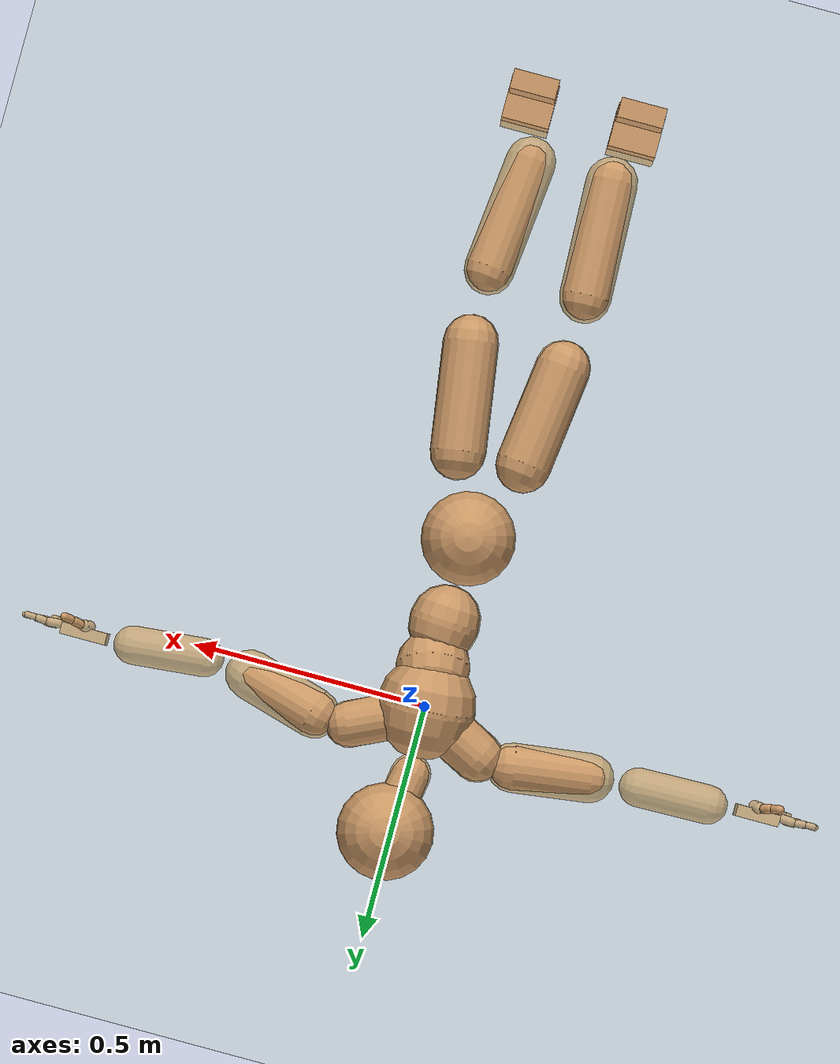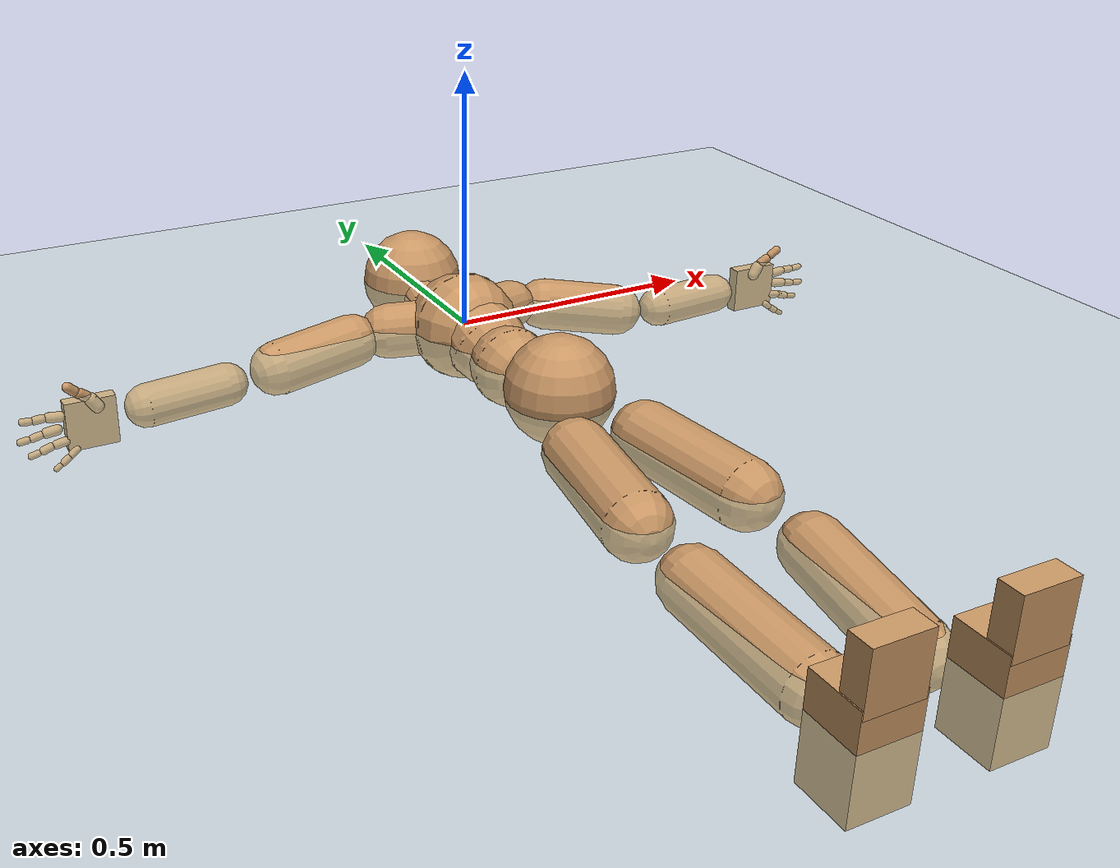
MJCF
<mujoco model="humanoid">
  <compiler coordinate="local"/>
  <default>
    <joint damping="0.0" armature="0.01" stiffness="0.0" limited="true"/>
    <geom conaffinity="1" condim="3" contype="7" margin="0.001" rgba="0.8 0.6 .4 1"/>
  </default>
  <asset>
    <texture type="skybox" builtin="gradient" rgb1=".4 .5 .6" rgb2="0 0 0" width="100" height="100"/>
    <texture builtin="flat" height="1278" mark="cross" markrgb="1 1 1" name="texgeom" random="0.01" rgb1="0.8 0.6 0.4" rgb2="0.8 0.6 0.4" type="cube" width="127"/>
    <texture builtin="checker" height="100" name="texplane" rgb1="0 0 0" rgb2="0.8 0.8 0.8" type="2d" width="100"/>
    <material name="MatPlane" reflectance="0.5" shininess="1" specular="1" texrepeat="60 60" texture="texplane"/>
    <material name="geom" texture="texgeom" texuniform="true"/>
  </asset>
  <worldbody>
    <light cutoff="100" diffuse="1 1 1" dir="-0 0 -1.3" directional="true" exponent="1" pos="0 0 1.3" specular=".1 .1 .1"/>
    <geom conaffinity="1" condim="3" name="floor" pos="0 0 0" rgba="0.8 0.9 0.8 1" size="100 100 .2" type="plane" material="MatPlane"/>
    <body name="Pelvis" pos="0.003 -0.364 0.0123">
      <freejoint name="Pelvis"/>
      <geom type="sphere" contype="1" conaffinity="1" density="4629.6296296296305" size="0.0998" pos="0.0000 0.0000 0.0000" name="Pelvis"/>
      <body name="L_Hip" pos="0.0572 -0.0946 -0.0249">
        <joint name="L_Hip_x" type="hinge" pos="0 0 0" axis="1 0 0" user="250 2.5 1 500 10 2" armature="0.01" range="-90.0000 90.0000" damping="0" stiffness="0"/>
        <joint name="L_Hip_y" type="hinge" pos="0 0 0" axis="0 1 0" user="250 2.5 1 500 10 2" armature="0.01" range="-90.0000 90.0000" damping="0" stiffness="0"/>
        <joint name="L_Hip_z" type="hinge" pos="0 0 0" axis="0 0 1" user="250 2.5 1 500 10 2" armature="0.01" range="-90.0000 90.0000" damping="0" stiffness="0"/>
        <geom type="capsule" contype="1" conaffinity="1" density="2040.816327" fromto="0.0113 -0.0767 -0.0014 0.0453 -0.3069 -0.0056" size="0.0598" name="L_Hip"/>
        <body name="L_Knee" pos="0.0567 -0.3836 -0.007">
          <joint name="L_Knee_x" type="hinge" pos="0 0 0" axis="1 0 0" user="250 2.5 1 500 10 2" armature="0.01" range="-180.0000 180.0000" damping="0" stiffness="0"/>
          <joint name="L_Knee_y" type="hinge" pos="0 0 0" axis="0 1 0" user="250 2.5 1 500 10 2" armature="0.01" range="-5.6250 5.6250" damping="0" stiffness="0"/>
          <joint name="L_Knee_z" type="hinge" pos="0 0 0" axis="0 0 1" user="250 2.5 1 500 10 2" armature="0.01" range="-5.6250 5.6250" damping="0" stiffness="0"/>
          <geom type="capsule" contype="1" conaffinity="1" density="1234.567901" fromto="-0.0085 -0.0818 -0.0063 -0.0342 -0.3273 -0.0251" size="0.0534" name="L_Knee"/>
          <body name="L_Ankle" pos="-0.0427 -0.4091 -0.0314">
            <joint name="L_Ankle_x" type="hinge" pos="0 0 0" axis="1 0 0" user="150 2.5 1 500 10 2" armature="0.01" range="-90.0000 90.0000" damping="0" stiffness="0"/>
            <joint name="L_Ankle_y" type="hinge" pos="0 0 0" axis="0 1 0" user="150 2.5 1 500 10 2" armature="0.01" range="-90.0000 90.0000" damping="0" stiffness="0"/>
            <joint name="L_Ankle_z" type="hinge" pos="0 0 0" axis="0 0 1" user="150 2.5 1 500 10 2" armature="0.01" range="-90.0000 90.0000" damping="0" stiffness="0"/>
            <geom type="box" density="448.525009" pos="0.0414 -0.0294 0.0240" size="0.0507 0.0474 0.0872" quat="1.0000 0.0000 0.0000 0.0000" name="L_Ankle"/>
            <body name="L_Toe" pos="0.048 -0.0593 0.1207">
              <joint name="L_Toe_x" type="hinge" pos="0 0 0" axis="1 0 0" user="150 1 1 500 1 1" armature="0.01" range="-90.0000 90.0000" damping="0" stiffness="0"/>
              <joint name="L_Toe_y" type="hinge" pos="0 0 0" axis="0 1 0" user="150 1 1 500 1 1" armature="0.01" range="-45.0000 45.0000" damping="0" stiffness="0"/>
              <joint name="L_Toe_z" type="hinge" pos="0 0 0" axis="0 0 1" user="150 1 1 500 1 1" armature="0.01" range="-45.0000 45.0000" damping="0" stiffness="0"/>
              <geom type="box" density="422.653692" pos="-0.0066 0.0035 0.0263" size="0.0487 0.021 0.0507" quat="1.0000 0.0000 0.0000 0.0000" name="L_Toe"/>
            </body>
          </body>
        </body>
      </body>
      <body name="R_Hip" pos="-0.0621 -0.1066 -0.0196">
        <joint name="R_Hip_x" type="hinge" pos="0 0 0" axis="1 0 0" user="250 2.5 1 500 10 2" armature="0.01" range="-90.0000 90.0000" damping="0" stiffness="0"/>
        <joint name="R_Hip_y" type="hinge" pos="0 0 0" axis="0 1 0" user="250 2.5 1 500 10 2" armature="0.01" range="-90.0000 90.0000" damping="0" stiffness="0"/>
        <joint name="R_Hip_z" type="hinge" pos="0 0 0" axis="0 0 1" user="250 2.5 1 500 10 2" armature="0.01" range="-90.0000 90.0000" damping="0" stiffness="0"/>
        <geom type="capsule" contype="1" conaffinity="1" density="2040.816327" fromto="-0.0092 -0.0732 -0.0030 -0.0369 -0.2929 -0.0119" size="0.0591" name="R_Hip"/>
        <body name="R_Knee" pos="-0.0462 -0.3662 -0.0148">
          <joint name="R_Knee_x" type="hinge" pos="0 0 0" axis="1 0 0" user="250 2.5 1 500 10 2" armature="0.01" range="-180.0000 180.0000" damping="0" stiffness="0"/>
          <joint name="R_Knee_y" type="hinge" pos="0 0 0" axis="0 1 0" user="250 2.5 1 500 10 2" armature="0.01" range="-5.6250 5.6250" damping="0" stiffness="0"/>
          <joint name="R_Knee_z" type="hinge" pos="0 0 0" axis="0 0 1" user="250 2.5 1 500 10 2" armature="0.01" range="-5.6250 5.6250" damping="0" stiffness="0"/>
          <geom type="capsule" contype="1" conaffinity="1" density="1234.567901" fromto="0.0029 -0.0834 -0.0039 0.0116 -0.3337 -0.0158" size="0.055" name="R_Knee"/>
          <body name="R_Ankle" pos="0.0145 -0.4171 -0.0197">
            <joint name="R_Ankle_x" type="hinge" pos="0 0 0" axis="1 0 0" user="150 1 1 500 10 2" armature="0.01" range="-90.0000 90.0000" damping="0" stiffness="0"/>
            <joint name="R_Ankle_y" type="hinge" pos="0 0 0" axis="0 1 0" user="150 1 1 500 10 2" armature="0.01" range="-90.0000 90.0000" damping="0" stiffness="0"/>
            <joint name="R_Ankle_z" type="hinge" pos="0 0 0" axis="0 0 1" user="150 1 1 500 10 2" armature="0.01" range="-90.0000 90.0000" damping="0" stiffness="0"/>
            <geom type="box" density="448.519576" pos="-0.0247 -0.0268 0.0149" size="0.0507 0.0474 0.0872" quat="1.0000 0.0000 0.0000 0.0000" name="R_Ankle"/>
            <body name="R_Toe" pos="-0.0394 -0.0595 0.1216">
              <joint name="R_Toe_x" type="hinge" pos="0 0 0" axis="1 0 0" user="150 1 1 500 1 1" armature="0.01" range="-90.0000 90.0000" damping="0" stiffness="0"/>
              <joint name="R_Toe_y" type="hinge" pos="0 0 0" axis="0 1 0" user="150 1 1 500 1 1" armature="0.01" range="-45.0000 45.0000" damping="0" stiffness="0"/>
              <joint name="R_Toe_z" type="hinge" pos="0 0 0" axis="0 0 1" user="150 1 1 500 1 1" armature="0.01" range="-45.0000 45.0000" damping="0" stiffness="0"/>
              <geom type="box" density="422.652273" pos="0.0147 0.0062 0.0162" size="0.0487 0.021 0.0507" quat="1.0000 0.0000 0.0000 0.0000" name="R_Toe"/>
            </body>
          </body>
        </body>
      </body>
      <body name="Torso" pos="-0.0026 0.1131 -0.0292">
        <joint name="Torso_x" type="hinge" pos="0 0 0" axis="1 0 0" user="500 5 1 500 10 2" armature="0.01" range="-60.0000 60.0000" damping="0" stiffness="0"/>
        <joint name="Torso_y" type="hinge" pos="0 0 0" axis="0 1 0" user="500 5 1 500 10 2" armature="0.01" range="-60.0000 60.0000" damping="0" stiffness="0"/>
        <joint name="Torso_z" type="hinge" pos="0 0 0" axis="0 0 1" user="500 5 1 500 10 2" armature="0.01" range="-60.0000 60.0000" damping="0" stiffness="0"/>
        <geom type="capsule" contype="1" conaffinity="1" density="2040.816327" fromto="0.0044 0.0625 -0.0030 0.0054 0.0764 -0.0036" size="0.0748" name="Torso"/>
        <body name="Spine" pos="0.0098 0.1389 -0.0066">
          <joint name="Spine_x" type="hinge" pos="0 0 0" axis="1 0 0" user="500 5 1 500 10 2" armature="0.01" range="-60.0000 60.0000" damping="0" stiffness="0"/>
          <joint name="Spine_y" type="hinge" pos="0 0 0" axis="0 1 0" user="500 5 1 500 10 2" armature="0.01" range="-60.0000 60.0000" damping="0" stiffness="0"/>
          <joint name="Spine_z" type="hinge" pos="0 0 0" axis="0 0 1" user="500 5 1 500 10 2" armature="0.01" range="-60.0000 60.0000" damping="0" stiffness="0"/>
          <geom type="capsule" contype="1" conaffinity="1" density="2040.816327" fromto="-0.0052 0.0248 0.0121 -0.0063 0.0303 0.0148" size="0.0786" name="Spine"/>
          <body name="Chest" pos="-0.0115 0.0551 0.027">
            <joint name="Chest_x" type="hinge" pos="0 0 0" axis="1 0 0" user="500 5 1 500 10 2" armature="0.01" range="-60.0000 60.0000" damping="0" stiffness="0"/>
            <joint name="Chest_y" type="hinge" pos="0 0 0" axis="0 1 0" user="500 5 1 500 10 2" armature="0.01" range="-60.0000 60.0000" damping="0" stiffness="0"/>
            <joint name="Chest_z" type="hinge" pos="0 0 0" axis="0 0 1" user="500 5 1 500 10 2" armature="0.01" range="-60.0000 60.0000" damping="0" stiffness="0"/>
            <geom type="capsule" contype="1" conaffinity="1" density="2040.816327" fromto="-0.0022 0.0510 -0.0072 -0.0026 0.0624 -0.0088" size="0.1043" name="Chest"/>
            <body name="Neck" pos="-0.0126 0.168 -0.0295">
              <joint name="Neck_x" type="hinge" pos="0 0 0" axis="1 0 0" user="150 1 1 250 50 4" armature="0.01" range="-180.0000 180.0000" damping="0" stiffness="0"/>
              <joint name="Neck_y" type="hinge" pos="0 0 0" axis="0 1 0" user="150 1 1 250 50 4" armature="0.01" range="-180.0000 180.0000" damping="0" stiffness="0"/>
              <joint name="Neck_z" type="hinge" pos="0 0 0" axis="0 0 1" user="150 1 1 250 50 4" armature="0.01" range="-180.0000 180.0000" damping="0" stiffness="0"/>
              <geom type="capsule" contype="1" conaffinity="1" density="1000" fromto="0.0051 0.0324 0.0043 0.0204 0.1296 0.0173" size="0.0431" name="Neck"/>
              <body name="Head" pos="0.0255 0.162 0.0216">
                <joint name="Head_x" type="hinge" pos="0 0 0" axis="1 0 0" user="150 1 1 250 50 4" armature="0.01" range="-90.0000 90.0000" damping="0" stiffness="0"/>
                <joint name="Head_y" type="hinge" pos="0 0 0" axis="0 1 0" user="150 1 1 250 50 4" armature="0.01" range="-90.0000 90.0000" damping="0" stiffness="0"/>
                <joint name="Head_z" type="hinge" pos="0 0 0" axis="0 0 1" user="150 1 1 250 50 4" armature="0.01" range="-90.0000 90.0000" damping="0" stiffness="0"/>
                <geom type="sphere" contype="1" conaffinity="1" density="1000" size="0.1027" pos="0.0000 0.0000 0.0000" name="Head"/>
              </body>
            </body>
            <body name="L_Thorax" pos="0.047 0.0865 -0.0061">
              <joint name="L_Thorax_x" type="hinge" pos="0 0 0" axis="1 0 0" user="200 2 1 500 50 4" armature="0.01" range="-180.0000 180.0000" damping="0" stiffness="0"/>
              <joint name="L_Thorax_y" type="hinge" pos="0 0 0" axis="0 1 0" user="200 2 1 500 50 4" armature="0.01" range="-180.0000 180.0000" damping="0" stiffness="0"/>
              <joint name="L_Thorax_z" type="hinge" pos="0 0 0" axis="0 0 1" user="200 2 1 500 50 4" armature="0.01" range="-180.0000 180.0000" damping="0" stiffness="0"/>
              <geom type="capsule" contype="1" conaffinity="1" density="1000" fromto="0.0245 0.0116 -0.0031 0.0979 0.0462 -0.0125" size="0.0496" name="L_Thorax"/>
              <body name="L_Shoulder" pos="0.1223 0.0578 -0.0156">
                <joint name="L_Shoulder_x" type="hinge" pos="0 0 0" axis="1 0 0" user="200 2 1 500 50 4" armature="0.01" range="-180.0000 180.0000" damping="0" stiffness="0"/>
                <joint name="L_Shoulder_y" type="hinge" pos="0 0 0" axis="0 1 0" user="200 2 1 500 50 4" armature="0.01" range="-180.0000 180.0000" damping="0" stiffness="0"/>
                <joint name="L_Shoulder_z" type="hinge" pos="0 0 0" axis="0 0 1" user="200 2 1 500 50 4" armature="0.01" range="-180.0000 180.0000" damping="0" stiffness="0"/>
                <geom type="capsule" contype="1" conaffinity="1" density="1000" fromto="0.0510 -0.0144 -0.0086 0.2039 -0.0575 -0.0345" size="0.0527" name="L_Shoulder"/>
                <body name="L_Elbow" pos="0.2549 -0.0718 -0.0431">
                  <joint name="L_Elbow_x" type="hinge" pos="0 0 0" axis="1 0 0" user="150 1 1 150 10 2" armature="0.01" range="-720.0000 720.0000" damping="0" stiffness="0"/>
                  <joint name="L_Elbow_y" type="hinge" pos="0 0 0" axis="0 1 0" user="150 1 1 150 10 2" armature="0.01" range="-720.0000 720.0000" damping="0" stiffness="0"/>
                  <joint name="L_Elbow_z" type="hinge" pos="0 0 0" axis="0 0 1" user="150 1 1 150 10 2" armature="0.01" range="-720.0000 720.0000" damping="0" stiffness="0"/>
                  <geom type="capsule" contype="1" conaffinity="1" density="1000" fromto="0.0512 0.0047 -0.0002 0.2046 0.0186 -0.0010" size="0.041" name="L_Elbow"/>
                  <body name="L_Wrist" pos="0.2558 0.0233 -0.0012">
                    <joint name="L_Wrist_x" type="hinge" pos="0 0 0" axis="1 0 0" user="100 1 1 150 1 1" armature="0.01" range="-180.0000 180.0000" damping="0" stiffness="0"/>
                    <joint name="L_Wrist_y" type="hinge" pos="0 0 0" axis="0 1 0" user="100 1 1 150 1 1" armature="0.01" range="-180.0000 180.0000" damping="0" stiffness="0"/>
                    <joint name="L_Wrist_z" type="hinge" pos="0 0 0" axis="0 0 1" user="100 1 1 150 1 1" armature="0.01" range="-180.0000 180.0000" damping="0" stiffness="0"/>
                    <geom type="box" density="1207.461229" pos="0.0533 -0.0013 -0.0029" size="0.0492 0.0125 0.0471" quat="1.0000 0.0000 0.0000 0.0000" name="L_Wrist"/>
                    <body name="L_Index1" pos="0.1036 -0.0084 0.02">
                      <joint name="L_Index1_x" type="hinge" pos="0 0 0" axis="1 0 0" user="100 10 1 150" armature="0.01" range="-180.0000 180.0000" damping="0" stiffness="0"/>
                      <joint name="L_Index1_y" type="hinge" pos="0 0 0" axis="0 1 0" user="100 10 1 150" armature="0.01" range="-180.0000 180.0000" damping="0" stiffness="0"/>
                      <joint name="L_Index1_z" type="hinge" pos="0 0 0" axis="0 0 1" user="100 10 1 150" armature="0.01" range="-180.0000 180.0000" damping="0" stiffness="0"/>
                      <geom type="capsule" contype="1" conaffinity="1" density="1000" fromto="0.0065 0.0005 0.0006 0.0259 0.0018 0.0024" size="0.0094" name="L_Index1"/>
                      <body name="L_Index2" pos="0.0324 0.0023 0.003">
                        <joint name="L_Index2_x" type="hinge" pos="0 0 0" axis="1 0 0" user="100 10 1 150" armature="0.01" range="-180.0000 180.0000" damping="0" stiffness="0"/>
                        <joint name="L_Index2_y" type="hinge" pos="0 0 0" axis="0 1 0" user="100 10 1 150" armature="0.01" range="-180.0000 180.0000" damping="0" stiffness="0"/>
                        <joint name="L_Index2_z" type="hinge" pos="0 0 0" axis="0 0 1" user="100 10 1 150" armature="0.01" range="-180.0000 180.0000" damping="0" stiffness="0"/>
                        <geom type="capsule" contype="1" conaffinity="1" density="1000" fromto="0.0046 -0.0005 -0.0000 0.0183 -0.0019 -0.0001" size="0.0078" name="L_Index2"/>
                        <body name="L_Index3" pos="0.0228 -0.0024 -0.0001">
                          <joint name="L_Index3_x" type="hinge" pos="0 0 0" axis="1 0 0" user="100 10 1 150" armature="0.01" range="-180.0000 180.0000" damping="0" stiffness="0"/>
                          <joint name="L_Index3_y" type="hinge" pos="0 0 0" axis="0 1 0" user="100 10 1 150" armature="0.01" range="-180.0000 180.0000" damping="0" stiffness="0"/>
                          <joint name="L_Index3_z" type="hinge" pos="0 0 0" axis="0 0 1" user="100 10 1 150" armature="0.01" range="-180.0000 180.0000" damping="0" stiffness="0"/>
                          <geom type="capsule" contype="1" conaffinity="1" density="1000" fromto="0.0050 -0.0001 0.0004 0.0199 -0.0003 0.0015" size="0.0066" name="L_Index3"/>
                        </body>
                      </body>
                    </body>
                    <body name="L_Middle1" pos="0.1113 -0.0061 -0.004">
                      <joint name="L_Middle1_x" type="hinge" pos="0 0 0" axis="1 0 0" user="100 10 1 150" armature="0.01" range="-180.0000 180.0000" damping="0" stiffness="0"/>
                      <joint name="L_Middle1_y" type="hinge" pos="0 0 0" axis="0 1 0" user="100 10 1 150" armature="0.01" range="-180.0000 180.0000" damping="0" stiffness="0"/>
                      <joint name="L_Middle1_z" type="hinge" pos="0 0 0" axis="0 0 1" user="100 10 1 150" armature="0.01" range="-180.0000 180.0000" damping="0" stiffness="0"/>
                      <geom type="capsule" contype="1" conaffinity="1" density="1000" fromto="0.0062 0.0002 -0.0008 0.0248 0.0006 -0.0033" size="0.0096" name="L_Middle1"/>
                      <body name="L_Middle2" pos="0.0311 0.0008 -0.0041">
                        <joint name="L_Middle2_x" type="hinge" pos="0 0 0" axis="1 0 0" user="100 10 1 150" armature="0.01" range="-180.0000 180.0000" damping="0" stiffness="0"/>
                        <joint name="L_Middle2_y" type="hinge" pos="0 0 0" axis="0 1 0" user="100 10 1 150" armature="0.01" range="-180.0000 180.0000" damping="0" stiffness="0"/>
                        <joint name="L_Middle2_z" type="hinge" pos="0 0 0" axis="0 0 1" user="100 10 1 150" armature="0.01" range="-180.0000 180.0000" damping="0" stiffness="0"/>
                        <geom type="capsule" contype="1" conaffinity="1" density="1000" fromto="0.0048 -0.0004 -0.0008 0.0190 -0.0017 -0.0034" size="0.0072" name="L_Middle2"/>
                        <body name="L_Middle3" pos="0.0238 -0.0021 -0.0042">
                          <joint name="L_Middle3_x" type="hinge" pos="0 0 0" axis="1 0 0" user="100 10 1 150" armature="0.01" range="-180.0000 180.0000" damping="0" stiffness="0"/>
                          <joint name="L_Middle3_y" type="hinge" pos="0 0 0" axis="0 1 0" user="100 10 1 150" armature="0.01" range="-180.0000 180.0000" damping="0" stiffness="0"/>
                          <joint name="L_Middle3_z" type="hinge" pos="0 0 0" axis="0 0 1" user="100 10 1 150" armature="0.01" range="-180.0000 180.0000" damping="0" stiffness="0"/>
                          <geom type="capsule" contype="1" conaffinity="1" density="1000" fromto="0.0052 -0.0000 -0.0004 0.0206 -0.0001 -0.0018" size="0.0062" name="L_Middle3"/>
                        </body>
                      </body>
                    </body>
                    <body name="L_Pinky1" pos="0.0856 -0.0145 -0.0447">
                      <joint name="L_Pinky1_x" type="hinge" pos="0 0 0" axis="1 0 0" user="100 10 1 150" armature="0.01" range="-180.0000 180.0000" damping="0" stiffness="0"/>
                      <joint name="L_Pinky1_y" type="hinge" pos="0 0 0" axis="0 1 0" user="100 10 1 150" armature="0.01" range="-180.0000 180.0000" damping="0" stiffness="0"/>
                      <joint name="L_Pinky1_z" type="hinge" pos="0 0 0" axis="0 0 1" user="100 10 1 150" armature="0.01" range="-180.0000 180.0000" damping="0" stiffness="0"/>
                      <geom type="capsule" contype="1" conaffinity="1" density="1000" fromto="0.0032 -0.0002 -0.0024 0.0128 -0.0010 -0.0098" size="0.0068" name="L_Pinky1"/>
                      <body name="L_Pinky2" pos="0.016 -0.0012 -0.0122">
                        <joint name="L_Pinky2_x" type="hinge" pos="0 0 0" axis="1 0 0" user="100 10 1 150" armature="0.01" range="-180.0000 180.0000" damping="0" stiffness="0"/>
                        <joint name="L_Pinky2_y" type="hinge" pos="0 0 0" axis="0 1 0" user="100 10 1 150" armature="0.01" range="-180.0000 180.0000" damping="0" stiffness="0"/>
                        <joint name="L_Pinky2_z" type="hinge" pos="0 0 0" axis="0 0 1" user="100 10 1 150" armature="0.01" range="-180.0000 180.0000" damping="0" stiffness="0"/>
                        <geom type="capsule" contype="1" conaffinity="1" density="1000" fromto="0.0032 -0.0004 -0.0023 0.0127 -0.0014 -0.0091" size="0.0066" name="L_Pinky2"/>
                        <body name="L_Pinky3" pos="0.0159 -0.0018 -0.0113">
                          <joint name="L_Pinky3_x" type="hinge" pos="0 0 0" axis="1 0 0" user="100 10 1 150" armature="0.01" range="-180.0000 180.0000" damping="0" stiffness="0"/>
                          <joint name="L_Pinky3_y" type="hinge" pos="0 0 0" axis="0 1 0" user="100 10 1 150" armature="0.01" range="-180.0000 180.0000" damping="0" stiffness="0"/>
                          <joint name="L_Pinky3_z" type="hinge" pos="0 0 0" axis="0 0 1" user="100 10 1 150" armature="0.01" range="-180.0000 180.0000" damping="0" stiffness="0"/>
                          <geom type="capsule" contype="1" conaffinity="1" density="1000" fromto="0.0036 0.0000 -0.0019 0.0143 0.0002 -0.0075" size="0.005" name="L_Pinky3"/>
                        </body>
                      </body>
                    </body>
                    <body name="L_Ring1" pos="0.0992 -0.0091 -0.0279">
                      <joint name="L_Ring1_x" type="hinge" pos="0 0 0" axis="1 0 0" user="100 10 1 150" armature="0.01" range="-180.0000 180.0000" damping="0" stiffness="0"/>
                      <joint name="L_Ring1_y" type="hinge" pos="0 0 0" axis="0 1 0" user="100 10 1 150" armature="0.01" range="-180.0000 180.0000" damping="0" stiffness="0"/>
                      <joint name="L_Ring1_z" type="hinge" pos="0 0 0" axis="0 0 1" user="100 10 1 150" armature="0.01" range="-180.0000 180.0000" damping="0" stiffness="0"/>
                      <geom type="capsule" contype="1" conaffinity="1" density="1000" fromto="0.0057 0.0003 -0.0011 0.0229 0.0012 -0.0043" size="0.0082" name="L_Ring1"/>
                      <body name="L_Ring2" pos="0.0286 0.0015 -0.0054">
                        <joint name="L_Ring2_x" type="hinge" pos="0 0 0" axis="1 0 0" user="100 10 1 150" armature="0.01" range="-180.0000 180.0000" damping="0" stiffness="0"/>
                        <joint name="L_Ring2_y" type="hinge" pos="0 0 0" axis="0 1 0" user="100 10 1 150" armature="0.01" range="-180.0000 180.0000" damping="0" stiffness="0"/>
                        <joint name="L_Ring2_z" type="hinge" pos="0 0 0" axis="0 0 1" user="100 10 1 150" armature="0.01" range="-180.0000 180.0000" damping="0" stiffness="0"/>
                        <geom type="capsule" contype="1" conaffinity="1" density="1000" fromto="0.0046 -0.0003 -0.0014 0.0186 -0.0013 -0.0058" size="0.0076" name="L_Ring2"/>
                        <body name="L_Ring3" pos="0.0232 -0.0016 -0.0072">
                          <joint name="L_Ring3_x" type="hinge" pos="0 0 0" axis="1 0 0" user="100 10 1 150" armature="0.01" range="-180.0000 180.0000" damping="0" stiffness="0"/>
                          <joint name="L_Ring3_y" type="hinge" pos="0 0 0" axis="0 1 0" user="100 10 1 150" armature="0.01" range="-180.0000 180.0000" damping="0" stiffness="0"/>
                          <joint name="L_Ring3_z" type="hinge" pos="0 0 0" axis="0 0 1" user="100 10 1 150" armature="0.01" range="-180.0000 180.0000" damping="0" stiffness="0"/>
                          <geom type="capsule" contype="1" conaffinity="1" density="1000" fromto="0.0050 0.0001 -0.0010 0.0202 0.0003 -0.0042" size="0.0059" name="L_Ring3"/>
                        </body>
                      </body>
                    </body>
                    <body name="L_Thumb1" pos="0.0413 -0.0184 0.0266">
                      <joint name="L_Thumb1_x" type="hinge" pos="0 0 0" axis="1 0 0" user="100 10 1 150" armature="0.01" range="-180.0000 180.0000" damping="0" stiffness="0"/>
                      <joint name="L_Thumb1_y" type="hinge" pos="0 0 0" axis="0 1 0" user="100 10 1 150" armature="0.01" range="-180.0000 180.0000" damping="0" stiffness="0"/>
                      <joint name="L_Thumb1_z" type="hinge" pos="0 0 0" axis="0 0 1" user="100 10 1 150" armature="0.01" range="-180.0000 180.0000" damping="0" stiffness="0"/>
                      <geom type="capsule" contype="1" conaffinity="1" density="1000" fromto="0.0035 0.0002 0.0051 0.0138 0.0009 0.0205" size="0.0123" name="L_Thumb1"/>
                      <body name="L_Thumb2" pos="0.0173 0.0011 0.0257">
                        <joint name="L_Thumb2_x" type="hinge" pos="0 0 0" axis="1 0 0" user="100 10 1 150" armature="0.01" range="-180.0000 180.0000" damping="0" stiffness="0"/>
                        <joint name="L_Thumb2_y" type="hinge" pos="0 0 0" axis="0 1 0" user="100 10 1 150" armature="0.01" range="-180.0000 180.0000" damping="0" stiffness="0"/>
                        <joint name="L_Thumb2_z" type="hinge" pos="0 0 0" axis="0 0 1" user="100 10 1 150" armature="0.01" range="-180.0000 180.0000" damping="0" stiffness="0"/>
                        <geom type="capsule" contype="1" conaffinity="1" density="1000" fromto="0.0042 -0.0010 0.0032 0.0167 -0.0042 0.0127" size="0.0098" name="L_Thumb2"/>
                        <body name="L_Thumb3" pos="0.0208 -0.0052 0.0158">
                          <joint name="L_Thumb3_x" type="hinge" pos="0 0 0" axis="1 0 0" user="100 10 1 150" armature="0.01" range="-180.0000 180.0000" damping="0" stiffness="0"/>
                          <joint name="L_Thumb3_y" type="hinge" pos="0 0 0" axis="0 1 0" user="100 10 1 150" armature="0.01" range="-180.0000 180.0000" damping="0" stiffness="0"/>
                          <joint name="L_Thumb3_z" type="hinge" pos="0 0 0" axis="0 0 1" user="100 10 1 150" armature="0.01" range="-180.0000 180.0000" damping="0" stiffness="0"/>
                          <geom type="capsule" contype="1" conaffinity="1" density="1000" fromto="0.0046 -0.0006 0.0036 0.0183 -0.0026 0.0143" size="0.0089" name="L_Thumb3"/>
                        </body>
                      </body>
                    </body>
                  </body>
                </body>
              </body>
            </body>
            <body name="R_Thorax" pos="-0.0488 0.0858 -0.0123">
              <joint name="R_Thorax_x" type="hinge" pos="0 0 0" axis="1 0 0" user="200 2 1 150 10 2" armature="0.01" range="-180.0000 180.0000" damping="0" stiffness="0"/>
              <joint name="R_Thorax_y" type="hinge" pos="0 0 0" axis="0 1 0" user="200 2 1 150 10 2" armature="0.01" range="-180.0000 180.0000" damping="0" stiffness="0"/>
              <joint name="R_Thorax_z" type="hinge" pos="0 0 0" axis="0 0 1" user="200 2 1 150 10 2" armature="0.01" range="-180.0000 180.0000" damping="0" stiffness="0"/>
              <geom type="capsule" contype="1" conaffinity="1" density="1000" fromto="-0.0211 0.0107 -0.0025 -0.0844 0.0428 -0.0102" size="0.0545" name="R_Thorax"/>
              <body name="R_Shoulder" pos="-0.1055 0.0534 -0.0127">
                <joint name="R_Shoulder_x" type="hinge" pos="0 0 0" axis="1 0 0" user="200 2 1 250 10 2" armature="0.01" range="-180.0000 180.0000" damping="0" stiffness="0"/>
                <joint name="R_Shoulder_y" type="hinge" pos="0 0 0" axis="0 1 0" user="200 2 1 250 10 2" armature="0.01" range="-180.0000 180.0000" damping="0" stiffness="0"/>
                <joint name="R_Shoulder_z" type="hinge" pos="0 0 0" axis="0 0 1" user="200 2 1 250 10 2" armature="0.01" range="-180.0000 180.0000" damping="0" stiffness="0"/>
                <geom type="capsule" contype="1" conaffinity="1" density="1000" fromto="-0.0545 -0.0071 -0.0054 -0.2178 -0.0285 -0.0217" size="0.0526" name="R_Shoulder"/>
                <body name="R_Elbow" pos="-0.2723 -0.0357 -0.0271">
                  <joint name="R_Elbow_x" type="hinge" pos="0 0 0" axis="1 0 0" user="150 1 1 150 10 2" armature="0.01" range="-720.0000 720.0000" damping="0" stiffness="0"/>
                  <joint name="R_Elbow_y" type="hinge" pos="0 0 0" axis="0 1 0" user="150 1 1 150 10 2" armature="0.01" range="-720.0000 720.0000" damping="0" stiffness="0"/>
                  <joint name="R_Elbow_z" type="hinge" pos="0 0 0" axis="0 0 1" user="150 1 1 150 10 2" armature="0.01" range="-720.0000 720.0000" damping="0" stiffness="0"/>
                  <geom type="capsule" contype="1" conaffinity="1" density="1000" fromto="-0.0506 -0.0009 -0.0028 -0.2023 -0.0038 -0.0113" size="0.0413" name="R_Elbow"/>
                  <body name="R_Wrist" pos="-0.2528 -0.0047 -0.0142">
                    <joint name="R_Wrist_x" type="hinge" pos="0 0 0" axis="1 0 0" user="100 1 1 150 1 1" armature="0.01" range="-180.0000 180.0000" damping="0" stiffness="0"/>
                    <joint name="R_Wrist_y" type="hinge" pos="0 0 0" axis="0 1 0" user="100 1 1 150 1 1" armature="0.01" range="-180.0000 180.0000" damping="0" stiffness="0"/>
                    <joint name="R_Wrist_z" type="hinge" pos="0 0 0" axis="0 0 1" user="100 1 1 150 1 1" armature="0.01" range="-180.0000 180.0000" damping="0" stiffness="0"/>
                    <geom type="box" density="1236.739561" pos="-0.0546 -0.0045 -0.0027" size="0.0463 0.0125 0.0471" quat="1.0000 0.0000 0.0000 0.0000" name="R_Wrist"/>
                    <body name="R_Index1" pos="-0.1016 -0.0116 0.0203">
                      <joint name="R_Index1_x" type="hinge" pos="0 0 0" axis="1 0 0" user="100 10 1 150" armature="0.01" range="-180.0000 180.0000" damping="0" stiffness="0"/>
                      <joint name="R_Index1_y" type="hinge" pos="0 0 0" axis="0 1 0" user="100 10 1 150" armature="0.01" range="-180.0000 180.0000" damping="0" stiffness="0"/>
                      <joint name="R_Index1_z" type="hinge" pos="0 0 0" axis="0 0 1" user="100 10 1 150" armature="0.01" range="-180.0000 180.0000" damping="0" stiffness="0"/>
                      <geom type="capsule" contype="1" conaffinity="1" density="1000" fromto="-0.0065 0.0005 0.0006 -0.0259 0.0018 0.0024" size="0.0094" name="R_Index1"/>
                      <body name="R_Index2" pos="-0.0324 0.0023 0.003">
                        <joint name="R_Index2_x" type="hinge" pos="0 0 0" axis="1 0 0" user="100 10 1 150" armature="0.01" range="-180.0000 180.0000" damping="0" stiffness="0"/>
                        <joint name="R_Index2_y" type="hinge" pos="0 0 0" axis="0 1 0" user="100 10 1 150" armature="0.01" range="-180.0000 180.0000" damping="0" stiffness="0"/>
                        <joint name="R_Index2_z" type="hinge" pos="0 0 0" axis="0 0 1" user="100 10 1 150" armature="0.01" range="-180.0000 180.0000" damping="0" stiffness="0"/>
                        <geom type="capsule" contype="1" conaffinity="1" density="1000" fromto="-0.0046 -0.0005 -0.0000 -0.0183 -0.0019 -0.0001" size="0.0078" name="R_Index2"/>
                        <body name="R_Index3" pos="-0.0228 -0.0024 -0.0001">
                          <joint name="R_Index3_x" type="hinge" pos="0 0 0" axis="1 0 0" user="100 10 1 150" armature="0.01" range="-180.0000 180.0000" damping="0" stiffness="0"/>
                          <joint name="R_Index3_y" type="hinge" pos="0 0 0" axis="0 1 0" user="100 10 1 150" armature="0.01" range="-180.0000 180.0000" damping="0" stiffness="0"/>
                          <joint name="R_Index3_z" type="hinge" pos="0 0 0" axis="0 0 1" user="100 10 1 150" armature="0.01" range="-180.0000 180.0000" damping="0" stiffness="0"/>
                          <geom type="capsule" contype="1" conaffinity="1" density="1000" fromto="-0.0042 -0.0001 0.0004 -0.0167 -0.0003 0.0015" size="0.0069" name="R_Index3"/>
                        </body>
                      </body>
                    </body>
                    <body name="R_Middle1" pos="-0.1093 -0.0092 -0.0037">
                      <joint name="R_Middle1_x" type="hinge" pos="0 0 0" axis="1 0 0" user="100 10 1 150" armature="0.01" range="-180.0000 180.0000" damping="0" stiffness="0"/>
                      <joint name="R_Middle1_y" type="hinge" pos="0 0 0" axis="0 1 0" user="100 10 1 150" armature="0.01" range="-180.0000 180.0000" damping="0" stiffness="0"/>
                      <joint name="R_Middle1_z" type="hinge" pos="0 0 0" axis="0 0 1" user="100 10 1 150" armature="0.01" range="-180.0000 180.0000" damping="0" stiffness="0"/>
                      <geom type="capsule" contype="1" conaffinity="1" density="1000" fromto="-0.0062 0.0002 -0.0008 -0.0248 0.0006 -0.0033" size="0.0096" name="R_Middle1"/>
                      <body name="R_Middle2" pos="-0.0311 0.0008 -0.0041">
                        <joint name="R_Middle2_x" type="hinge" pos="0 0 0" axis="1 0 0" user="100 10 1 150" armature="0.01" range="-180.0000 180.0000" damping="0" stiffness="0"/>
                        <joint name="R_Middle2_y" type="hinge" pos="0 0 0" axis="0 1 0" user="100 10 1 150" armature="0.01" range="-180.0000 180.0000" damping="0" stiffness="0"/>
                        <joint name="R_Middle2_z" type="hinge" pos="0 0 0" axis="0 0 1" user="100 10 1 150" armature="0.01" range="-180.0000 180.0000" damping="0" stiffness="0"/>
                        <geom type="capsule" contype="1" conaffinity="1" density="1000" fromto="-0.0048 -0.0004 -0.0008 -0.0190 -0.0017 -0.0034" size="0.0072" name="R_Middle2"/>
                        <body name="R_Middle3" pos="-0.0238 -0.0021 -0.0042">
                          <joint name="R_Middle3_x" type="hinge" pos="0 0 0" axis="1 0 0" user="100 10 1 150" armature="0.01" range="-180.0000 180.0000" damping="0" stiffness="0"/>
                          <joint name="R_Middle3_y" type="hinge" pos="0 0 0" axis="0 1 0" user="100 10 1 150" armature="0.01" range="-180.0000 180.0000" damping="0" stiffness="0"/>
                          <joint name="R_Middle3_z" type="hinge" pos="0 0 0" axis="0 0 1" user="100 10 1 150" armature="0.01" range="-180.0000 180.0000" damping="0" stiffness="0"/>
                          <geom type="capsule" contype="1" conaffinity="1" density="1000" fromto="-0.0044 -0.0000 -0.0004 -0.0174 -0.0001 -0.0018" size="0.0065" name="R_Middle3"/>
                        </body>
                      </body>
                    </body>
                    <body name="R_Pinky1" pos="-0.0836 -0.0177 -0.0445">
                      <joint name="R_Pinky1_x" type="hinge" pos="0 0 0" axis="1 0 0" user="100 10 1 150" armature="0.01" range="-180.0000 180.0000" damping="0" stiffness="0"/>
                      <joint name="R_Pinky1_y" type="hinge" pos="0 0 0" axis="0 1 0" user="100 10 1 150" armature="0.01" range="-180.0000 180.0000" damping="0" stiffness="0"/>
                      <joint name="R_Pinky1_z" type="hinge" pos="0 0 0" axis="0 0 1" user="100 10 1 150" armature="0.01" range="-180.0000 180.0000" damping="0" stiffness="0"/>
                      <geom type="capsule" contype="1" conaffinity="1" density="1000" fromto="-0.0032 -0.0002 -0.0024 -0.0128 -0.0010 -0.0098" size="0.0068" name="R_Pinky1"/>
                      <body name="R_Pinky2" pos="-0.016 -0.0012 -0.0122">
                        <joint name="R_Pinky2_x" type="hinge" pos="0 0 0" axis="1 0 0" user="100 10 1 150" armature="0.01" range="-180.0000 180.0000" damping="0" stiffness="0"/>
                        <joint name="R_Pinky2_y" type="hinge" pos="0 0 0" axis="0 1 0" user="100 10 1 150" armature="0.01" range="-180.0000 180.0000" damping="0" stiffness="0"/>
                        <joint name="R_Pinky2_z" type="hinge" pos="0 0 0" axis="0 0 1" user="100 10 1 150" armature="0.01" range="-180.0000 180.0000" damping="0" stiffness="0"/>
                        <geom type="capsule" contype="1" conaffinity="1" density="1000" fromto="-0.0032 -0.0004 -0.0023 -0.0127 -0.0014 -0.0091" size="0.0066" name="R_Pinky2"/>
                        <body name="R_Pinky3" pos="-0.0159 -0.0018 -0.0113">
                          <joint name="R_Pinky3_x" type="hinge" pos="0 0 0" axis="1 0 0" user="100 10 1 150" armature="0.01" range="-180.0000 180.0000" damping="0" stiffness="0"/>
                          <joint name="R_Pinky3_y" type="hinge" pos="0 0 0" axis="0 1 0" user="100 10 1 150" armature="0.01" range="-180.0000 180.0000" damping="0" stiffness="0"/>
                          <joint name="R_Pinky3_z" type="hinge" pos="0 0 0" axis="0 0 1" user="100 10 1 150" armature="0.01" range="-180.0000 180.0000" damping="0" stiffness="0"/>
                          <geom type="capsule" contype="1" conaffinity="1" density="1000" fromto="-0.0028 0.0000 -0.0019 -0.0111 0.0002 -0.0075" size="0.0053" name="R_Pinky3"/>
                        </body>
                      </body>
                    </body>
                    <body name="R_Ring1" pos="-0.0972 -0.0123 -0.0277">
                      <joint name="R_Ring1_x" type="hinge" pos="0 0 0" axis="1 0 0" user="100 10 1 150" armature="0.01" range="-180.0000 180.0000" damping="0" stiffness="0"/>
                      <joint name="R_Ring1_y" type="hinge" pos="0 0 0" axis="0 1 0" user="100 10 1 150" armature="0.01" range="-180.0000 180.0000" damping="0" stiffness="0"/>
                      <joint name="R_Ring1_z" type="hinge" pos="0 0 0" axis="0 0 1" user="100 10 1 150" armature="0.01" range="-180.0000 180.0000" damping="0" stiffness="0"/>
                      <geom type="capsule" contype="1" conaffinity="1" density="1000" fromto="-0.0057 0.0003 -0.0011 -0.0229 0.0012 -0.0043" size="0.0082" name="R_Ring1"/>
                      <body name="R_Ring2" pos="-0.0286 0.0015 -0.0054">
                        <joint name="R_Ring2_x" type="hinge" pos="0 0 0" axis="1 0 0" user="100 10 1 150" armature="0.01" range="-180.0000 180.0000" damping="0" stiffness="0"/>
                        <joint name="R_Ring2_y" type="hinge" pos="0 0 0" axis="0 1 0" user="100 10 1 150" armature="0.01" range="-180.0000 180.0000" damping="0" stiffness="0"/>
                        <joint name="R_Ring2_z" type="hinge" pos="0 0 0" axis="0 0 1" user="100 10 1 150" armature="0.01" range="-180.0000 180.0000" damping="0" stiffness="0"/>
                        <geom type="capsule" contype="1" conaffinity="1" density="1000" fromto="-0.0046 -0.0003 -0.0014 -0.0186 -0.0013 -0.0058" size="0.0076" name="R_Ring2"/>
                        <body name="R_Ring3" pos="-0.0232 -0.0016 -0.0072">
                          <joint name="R_Ring3_x" type="hinge" pos="0 0 0" axis="1 0 0" user="100 10 1 150" armature="0.01" range="-180.0000 180.0000" damping="0" stiffness="0"/>
                          <joint name="R_Ring3_y" type="hinge" pos="0 0 0" axis="0 1 0" user="100 10 1 150" armature="0.01" range="-180.0000 180.0000" damping="0" stiffness="0"/>
                          <joint name="R_Ring3_z" type="hinge" pos="0 0 0" axis="0 0 1" user="100 10 1 150" armature="0.01" range="-180.0000 180.0000" damping="0" stiffness="0"/>
                          <geom type="capsule" contype="1" conaffinity="1" density="1000" fromto="-0.0042 0.0001 -0.0010 -0.0170 0.0003 -0.0042" size="0.0062" name="R_Ring3"/>
                        </body>
                      </body>
                    </body>
                    <body name="R_Thumb1" pos="-0.0393 -0.0216 0.0268">
                      <joint name="R_Thumb1_x" type="hinge" pos="0 0 0" axis="1 0 0" user="100 10 1 150" armature="0.01" range="-180.0000 180.0000" damping="0" stiffness="0"/>
                      <joint name="R_Thumb1_y" type="hinge" pos="0 0 0" axis="0 1 0" user="100 10 1 150" armature="0.01" range="-180.0000 180.0000" damping="0" stiffness="0"/>
                      <joint name="R_Thumb1_z" type="hinge" pos="0 0 0" axis="0 0 1" user="100 10 1 150" armature="0.01" range="-180.0000 180.0000" damping="0" stiffness="0"/>
                      <geom type="capsule" contype="1" conaffinity="1" density="1000" fromto="-0.0035 0.0002 0.0051 -0.0138 0.0009 0.0205" size="0.0123" name="R_Thumb1"/>
                      <body name="R_Thumb2" pos="-0.0173 0.0011 0.0257">
                        <joint name="R_Thumb2_x" type="hinge" pos="0 0 0" axis="1 0 0" user="100 10 1 150" armature="0.01" range="-180.0000 180.0000" damping="0" stiffness="0"/>
                        <joint name="R_Thumb2_y" type="hinge" pos="0 0 0" axis="0 1 0" user="100 10 1 150" armature="0.01" range="-180.0000 180.0000" damping="0" stiffness="0"/>
                        <joint name="R_Thumb2_z" type="hinge" pos="0 0 0" axis="0 0 1" user="100 10 1 150" armature="0.01" range="-180.0000 180.0000" damping="0" stiffness="0"/>
                        <geom type="capsule" contype="1" conaffinity="1" density="1000" fromto="-0.0042 -0.0010 0.0032 -0.0167 -0.0042 0.0127" size="0.0098" name="R_Thumb2"/>
                        <body name="R_Thumb3" pos="-0.0208 -0.0052 0.0158">
                          <joint name="R_Thumb3_x" type="hinge" pos="0 0 0" axis="1 0 0" user="100 10 1 150" armature="0.01" range="-180.0000 180.0000" damping="0" stiffness="0"/>
                          <joint name="R_Thumb3_y" type="hinge" pos="0 0 0" axis="0 1 0" user="100 10 1 150" armature="0.01" range="-180.0000 180.0000" damping="0" stiffness="0"/>
                          <joint name="R_Thumb3_z" type="hinge" pos="0 0 0" axis="0 0 1" user="100 10 1 150" armature="0.01" range="-180.0000 180.0000" damping="0" stiffness="0"/>
                          <geom type="capsule" contype="1" conaffinity="1" density="1000" fromto="-0.0038 -0.0006 0.0036 -0.0151 -0.0026 0.0143" size="0.0092" name="R_Thumb3"/>
                        </body>
                      </body>
                    </body>
                  </body>
                </body>
              </body>
            </body>
          </body>
        </body>
      </body>
    </body>
  </worldbody>
  <actuator>
    <motor name="L_Hip_x" joint="L_Hip_x" gear="1"/>
    <motor name="L_Hip_y" joint="L_Hip_y" gear="1"/>
    <motor name="L_Hip_z" joint="L_Hip_z" gear="1"/>
    <motor name="L_Knee_x" joint="L_Knee_x" gear="1"/>
    <motor name="L_Knee_y" joint="L_Knee_y" gear="1"/>
    <motor name="L_Knee_z" joint="L_Knee_z" gear="1"/>
    <motor name="L_Ankle_x" joint="L_Ankle_x" gear="1"/>
    <motor name="L_Ankle_y" joint="L_Ankle_y" gear="1"/>
    <motor name="L_Ankle_z" joint="L_Ankle_z" gear="1"/>
    <motor name="L_Toe_x" joint="L_Toe_x" gear="1"/>
    <motor name="L_Toe_y" joint="L_Toe_y" gear="1"/>
    <motor name="L_Toe_z" joint="L_Toe_z" gear="1"/>
    <motor name="R_Hip_x" joint="R_Hip_x" gear="1"/>
    <motor name="R_Hip_y" joint="R_Hip_y" gear="1"/>
    <motor name="R_Hip_z" joint="R_Hip_z" gear="1"/>
    <motor name="R_Knee_x" joint="R_Knee_x" gear="1"/>
    <motor name="R_Knee_y" joint="R_Knee_y" gear="1"/>
    <motor name="R_Knee_z" joint="R_Knee_z" gear="1"/>
    <motor name="R_Ankle_x" joint="R_Ankle_x" gear="1"/>
    <motor name="R_Ankle_y" joint="R_Ankle_y" gear="1"/>
    <motor name="R_Ankle_z" joint="R_Ankle_z" gear="1"/>
    <motor name="R_Toe_x" joint="R_Toe_x" gear="1"/>
    <motor name="R_Toe_y" joint="R_Toe_y" gear="1"/>
    <motor name="R_Toe_z" joint="R_Toe_z" gear="1"/>
    <motor name="Torso_x" joint="Torso_x" gear="1"/>
    <motor name="Torso_y" joint="Torso_y" gear="1"/>
    <motor name="Torso_z" joint="Torso_z" gear="1"/>
    <motor name="Spine_x" joint="Spine_x" gear="1"/>
    <motor name="Spine_y" joint="Spine_y" gear="1"/>
    <motor name="Spine_z" joint="Spine_z" gear="1"/>
    <motor name="Chest_x" joint="Chest_x" gear="1"/>
    <motor name="Chest_y" joint="Chest_y" gear="1"/>
    <motor name="Chest_z" joint="Chest_z" gear="1"/>
    <motor name="Neck_x" joint="Neck_x" gear="1"/>
    <motor name="Neck_y" joint="Neck_y" gear="1"/>
    <motor name="Neck_z" joint="Neck_z" gear="1"/>
    <motor name="Head_x" joint="Head_x" gear="1"/>
    <motor name="Head_y" joint="Head_y" gear="1"/>
    <motor name="Head_z" joint="Head_z" gear="1"/>
    <motor name="L_Thorax_x" joint="L_Thorax_x" gear="1"/>
    <motor name="L_Thorax_y" joint="L_Thorax_y" gear="1"/>
    <motor name="L_Thorax_z" joint="L_Thorax_z" gear="1"/>
    <motor name="L_Shoulder_x" joint="L_Shoulder_x" gear="1"/>
    <motor name="L_Shoulder_y" joint="L_Shoulder_y" gear="1"/>
    <motor name="L_Shoulder_z" joint="L_Shoulder_z" gear="1"/>
    <motor name="L_Elbow_x" joint="L_Elbow_x" gear="1"/>
    <motor name="L_Elbow_y" joint="L_Elbow_y" gear="1"/>
    <motor name="L_Elbow_z" joint="L_Elbow_z" gear="1"/>
    <motor name="L_Wrist_x" joint="L_Wrist_x" gear="1"/>
    <motor name="L_Wrist_y" joint="L_Wrist_y" gear="1"/>
    <motor name="L_Wrist_z" joint="L_Wrist_z" gear="1"/>
    <motor name="L_Index1_x" joint="L_Index1_x" gear="1"/>
    <motor name="L_Index1_y" joint="L_Index1_y" gear="1"/>
    <motor name="L_Index1_z" joint="L_Index1_z" gear="1"/>
    <motor name="L_Index2_x" joint="L_Index2_x" gear="1"/>
    <motor name="L_Index2_y" joint="L_Index2_y" gear="1"/>
    <motor name="L_Index2_z" joint="L_Index2_z" gear="1"/>
    <motor name="L_Index3_x" joint="L_Index3_x" gear="1"/>
    <motor name="L_Index3_y" joint="L_Index3_y" gear="1"/>
    <motor name="L_Index3_z" joint="L_Index3_z" gear="1"/>
    <motor name="L_Middle1_x" joint="L_Middle1_x" gear="1"/>
    <motor name="L_Middle1_y" joint="L_Middle1_y" gear="1"/>
    <motor name="L_Middle1_z" joint="L_Middle1_z" gear="1"/>
    <motor name="L_Middle2_x" joint="L_Middle2_x" gear="1"/>
    <motor name="L_Middle2_y" joint="L_Middle2_y" gear="1"/>
    <motor name="L_Middle2_z" joint="L_Middle2_z" gear="1"/>
    <motor name="L_Middle3_x" joint="L_Middle3_x" gear="1"/>
    <motor name="L_Middle3_y" joint="L_Middle3_y" gear="1"/>
    <motor name="L_Middle3_z" joint="L_Middle3_z" gear="1"/>
    <motor name="L_Pinky1_x" joint="L_Pinky1_x" gear="1"/>
    <motor name="L_Pinky1_y" joint="L_Pinky1_y" gear="1"/>
    <motor name="L_Pinky1_z" joint="L_Pinky1_z" gear="1"/>
    <motor name="L_Pinky2_x" joint="L_Pinky2_x" gear="1"/>
    <motor name="L_Pinky2_y" joint="L_Pinky2_y" gear="1"/>
    <motor name="L_Pinky2_z" joint="L_Pinky2_z" gear="1"/>
    <motor name="L_Pinky3_x" joint="L_Pinky3_x" gear="1"/>
    <motor name="L_Pinky3_y" joint="L_Pinky3_y" gear="1"/>
    <motor name="L_Pinky3_z" joint="L_Pinky3_z" gear="1"/>
    <motor name="L_Ring1_x" joint="L_Ring1_x" gear="1"/>
    <motor name="L_Ring1_y" joint="L_Ring1_y" gear="1"/>
    <motor name="L_Ring1_z" joint="L_Ring1_z" gear="1"/>
    <motor name="L_Ring2_x" joint="L_Ring2_x" gear="1"/>
    <motor name="L_Ring2_y" joint="L_Ring2_y" gear="1"/>
    <motor name="L_Ring2_z" joint="L_Ring2_z" gear="1"/>
    <motor name="L_Ring3_x" joint="L_Ring3_x" gear="1"/>
    <motor name="L_Ring3_y" joint="L_Ring3_y" gear="1"/>
    <motor name="L_Ring3_z" joint="L_Ring3_z" gear="1"/>
    <motor name="L_Thumb1_x" joint="L_Thumb1_x" gear="1"/>
    <motor name="L_Thumb1_y" joint="L_Thumb1_y" gear="1"/>
    <motor name="L_Thumb1_z" joint="L_Thumb1_z" gear="1"/>
    <motor name="L_Thumb2_x" joint="L_Thumb2_x" gear="1"/>
    <motor name="L_Thumb2_y" joint="L_Thumb2_y" gear="1"/>
    <motor name="L_Thumb2_z" joint="L_Thumb2_z" gear="1"/>
    <motor name="L_Thumb3_x" joint="L_Thumb3_x" gear="1"/>
    <motor name="L_Thumb3_y" joint="L_Thumb3_y" gear="1"/>
    <motor name="L_Thumb3_z" joint="L_Thumb3_z" gear="1"/>
    <motor name="R_Thorax_x" joint="R_Thorax_x" gear="1"/>
    <motor name="R_Thorax_y" joint="R_Thorax_y" gear="1"/>
    <motor name="R_Thorax_z" joint="R_Thorax_z" gear="1"/>
    <motor name="R_Shoulder_x" joint="R_Shoulder_x" gear="1"/>
    <motor name="R_Shoulder_y" joint="R_Shoulder_y" gear="1"/>
    <motor name="R_Shoulder_z" joint="R_Shoulder_z" gear="1"/>
    <motor name="R_Elbow_x" joint="R_Elbow_x" gear="1"/>
    <motor name="R_Elbow_y" joint="R_Elbow_y" gear="1"/>
    <motor name="R_Elbow_z" joint="R_Elbow_z" gear="1"/>
    <motor name="R_Wrist_x" joint="R_Wrist_x" gear="1"/>
    <motor name="R_Wrist_y" joint="R_Wrist_y" gear="1"/>
    <motor name="R_Wrist_z" joint="R_Wrist_z" gear="1"/>
    <motor name="R_Index1_x" joint="R_Index1_x" gear="1"/>
    <motor name="R_Index1_y" joint="R_Index1_y" gear="1"/>
    <motor name="R_Index1_z" joint="R_Index1_z" gear="1"/>
    <motor name="R_Index2_x" joint="R_Index2_x" gear="1"/>
    <motor name="R_Index2_y" joint="R_Index2_y" gear="1"/>
    <motor name="R_Index2_z" joint="R_Index2_z" gear="1"/>
    <motor name="R_Index3_x" joint="R_Index3_x" gear="1"/>
    <motor name="R_Index3_y" joint="R_Index3_y" gear="1"/>
    <motor name="R_Index3_z" joint="R_Index3_z" gear="1"/>
    <motor name="R_Middle1_x" joint="R_Middle1_x" gear="1"/>
    <motor name="R_Middle1_y" joint="R_Middle1_y" gear="1"/>
    <motor name="R_Middle1_z" joint="R_Middle1_z" gear="1"/>
    <motor name="R_Middle2_x" joint="R_Middle2_x" gear="1"/>
    <motor name="R_Middle2_y" joint="R_Middle2_y" gear="1"/>
    <motor name="R_Middle2_z" joint="R_Middle2_z" gear="1"/>
    <motor name="R_Middle3_x" joint="R_Middle3_x" gear="1"/>
    <motor name="R_Middle3_y" joint="R_Middle3_y" gear="1"/>
    <motor name="R_Middle3_z" joint="R_Middle3_z" gear="1"/>
    <motor name="R_Pinky1_x" joint="R_Pinky1_x" gear="1"/>
    <motor name="R_Pinky1_y" joint="R_Pinky1_y" gear="1"/>
    <motor name="R_Pinky1_z" joint="R_Pinky1_z" gear="1"/>
    <motor name="R_Pinky2_x" joint="R_Pinky2_x" gear="1"/>
    <motor name="R_Pinky2_y" joint="R_Pinky2_y" gear="1"/>
    <motor name="R_Pinky2_z" joint="R_Pinky2_z" gear="1"/>
    <motor name="R_Pinky3_x" joint="R_Pinky3_x" gear="1"/>
    <motor name="R_Pinky3_y" joint="R_Pinky3_y" gear="1"/>
    <motor name="R_Pinky3_z" joint="R_Pinky3_z" gear="1"/>
    <motor name="R_Ring1_x" joint="R_Ring1_x" gear="1"/>
    <motor name="R_Ring1_y" joint="R_Ring1_y" gear="1"/>
    <motor name="R_Ring1_z" joint="R_Ring1_z" gear="1"/>
    <motor name="R_Ring2_x" joint="R_Ring2_x" gear="1"/>
    <motor name="R_Ring2_y" joint="R_Ring2_y" gear="1"/>
    <motor name="R_Ring2_z" joint="R_Ring2_z" gear="1"/>
    <motor name="R_Ring3_x" joint="R_Ring3_x" gear="1"/>
    <motor name="R_Ring3_y" joint="R_Ring3_y" gear="1"/>
    <motor name="R_Ring3_z" joint="R_Ring3_z" gear="1"/>
    <motor name="R_Thumb1_x" joint="R_Thumb1_x" gear="1"/>
    <motor name="R_Thumb1_y" joint="R_Thumb1_y" gear="1"/>
    <motor name="R_Thumb1_z" joint="R_Thumb1_z" gear="1"/>
    <motor name="R_Thumb2_x" joint="R_Thumb2_x" gear="1"/>
    <motor name="R_Thumb2_y" joint="R_Thumb2_y" gear="1"/>
    <motor name="R_Thumb2_z" joint="R_Thumb2_z" gear="1"/>
    <motor name="R_Thumb3_x" joint="R_Thumb3_x" gear="1"/>
    <motor name="R_Thumb3_y" joint="R_Thumb3_y" gear="1"/>
    <motor name="R_Thumb3_z" joint="R_Thumb3_z" gear="1"/>
  </actuator>
  <contact>
    <exclude body1="Torso" body2="Chest"/>
    <exclude body1="Head" body2="Chest"/>
    <exclude body1="R_Knee" body2="R_Toe"/>
    <exclude body1="R_Knee" body2="L_Ankle"/>
    <exclude body1="R_Knee" body2="L_Toe"/>
    <exclude body1="L_Knee" body2="L_Toe"/>
    <exclude body1="L_Knee" body2="R_Ankle"/>
    <exclude body1="L_Knee" body2="R_Toe"/>
    <exclude body1="L_Shoulder" body2="Chest"/>
    <exclude body1="R_Shoulder" body2="Chest"/>
  </contact>
  <sensor/>
  <size njmax="700" nconmax="700"/>
</mujoco>
